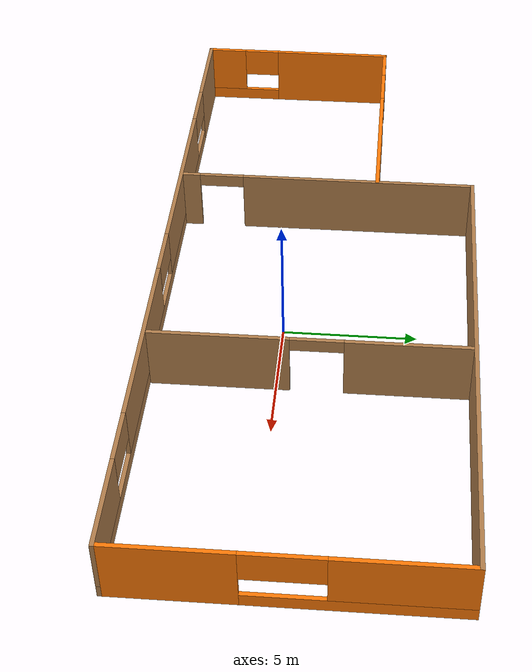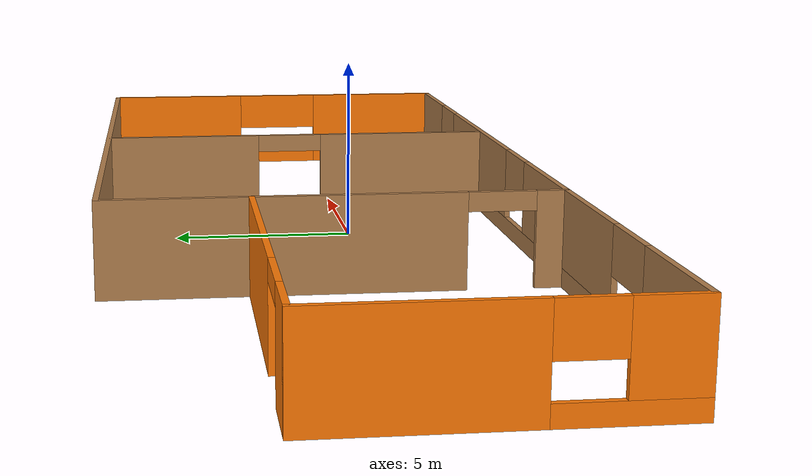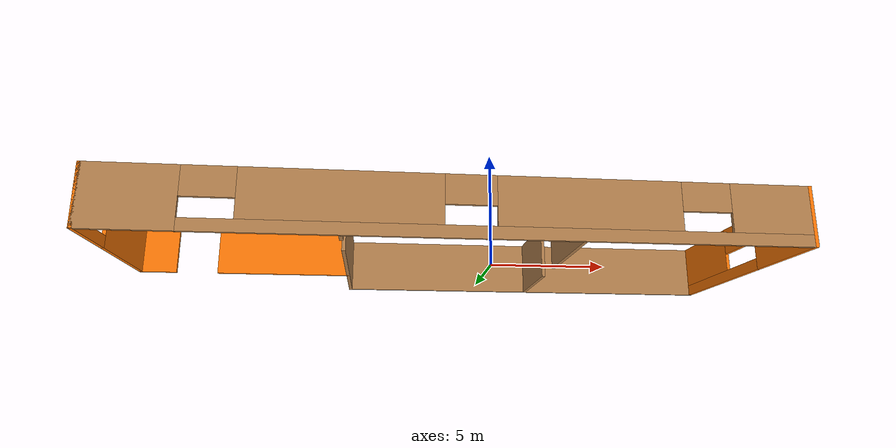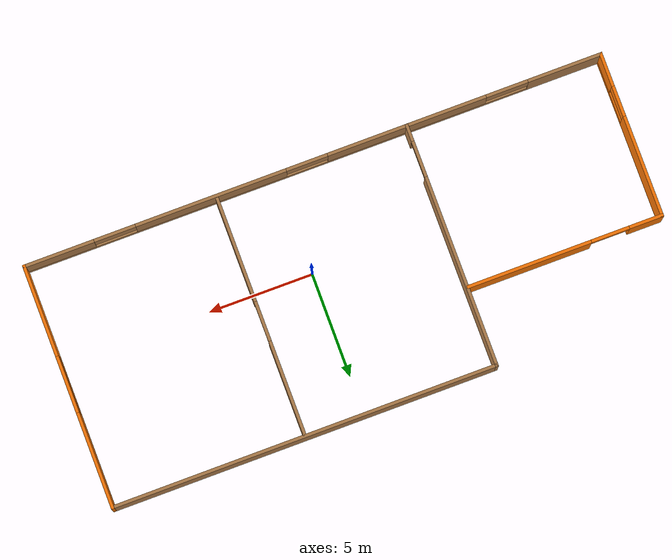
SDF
<?xml version='1.0'?>
<sdf version='1.6'>
  <model name='model'>
    <pose frame=''>-1.77008 1.17451 0 0 -0 0</pose>
    <link name='Wall_0'>
      <pose frame=''>-13.9251 -1.88049 0 0 0 -1.5708</pose>
      <visual name='Wall_0_Visual_0'>
        <pose frame=''>-1.55568 0 1.25 0 -0 0</pose>
        <geometry>
          <box>
            <size>4.88864 0.15 2.5</size>
          </box>
        </geometry>
        <material>
          <script>
            <uri>file://media/materials/scripts/gazebo.material</uri>
            <name>Gazebo/Grey</name>
          </script>
          <ambient>0.996078 0.47451 0.0196078 1</ambient>
        </material>
        <meta>
          <layer>0</layer>
        </meta>
      </visual>
      <collision name='Wall_0_Collision_0'>
        <geometry>
          <box>
            <size>4.88864 0.15 2.5</size>
          </box>
        </geometry>
        <pose frame=''>-1.55568 0 1.25 0 -0 0</pose>
      </collision>
      <visual name='Wall_0_Visual_1'>
        <pose frame=''>2.44432 0 0.25 0 -0 0</pose>
        <geometry>
          <box>
            <size>3.11136 0.15 0.5</size>
          </box>
        </geometry>
        <material>
          <script>
            <uri>file://media/materials/scripts/gazebo.material</uri>
            <name>Gazebo/Grey</name>
          </script>
          <ambient>0.996078 0.47451 0.0196078 1</ambient>
        </material>
        <meta>
          <layer>0</layer>
        </meta>
      </visual>
      <collision name='Wall_0_Collision_1'>
        <geometry>
          <box>
            <size>3.11136 0.15 0.5</size>
          </box>
        </geometry>
        <pose frame=''>2.44432 0 0.25 0 -0 0</pose>
      </collision>
      <visual name='Wall_0_Visual_2'>
        <pose frame=''>3.17682 0 1.5 0 -0 0</pose>
        <geometry>
          <box>
            <size>1.64636 0.15 2</size>
          </box>
        </geometry>
        <material>
          <script>
            <uri>file://media/materials/scripts/gazebo.material</uri>
            <name>Gazebo/Grey</name>
          </script>
          <ambient>0.996078 0.47451 0.0196078 1</ambient>
        </material>
        <meta>
          <layer>0</layer>
        </meta>
      </visual>
      <collision name='Wall_0_Collision_2'>
        <geometry>
          <box>
            <size>1.64636 0.15 2</size>
          </box>
        </geometry>
        <pose frame=''>3.17682 0 1.5 0 -0 0</pose>
      </collision>
      <visual name='Wall_0_Visual_3'>
        <pose frame=''>1.62114 0 1.9 0 -0 0</pose>
        <geometry>
          <box>
            <size>1.465 0.15 1.2</size>
          </box>
        </geometry>
        <material>
          <script>
            <uri>file://media/materials/scripts/gazebo.material</uri>
            <name>Gazebo/Grey</name>
          </script>
          <ambient>0.996078 0.47451 0.0196078 1</ambient>
        </material>
        <meta>
          <layer>0</layer>
        </meta>
      </visual>
      <collision name='Wall_0_Collision_3'>
        <geometry>
          <box>
            <size>1.465 0.15 1.2</size>
          </box>
        </geometry>
        <pose frame=''>1.62114 0 1.9 0 -0 0</pose>
      </collision>
    </link>
    <link name='Wall_1'>
      <pose frame=''>-8.2e-05 -5.80549 0 0 -0 0</pose>
      <visual name='Wall_1_Visual_0'>
        <pose frame=''>-12.1941 0 1.25 0 -0 0</pose>
        <geometry>
          <box>
            <size>3.61183 0.15 2.5</size>
          </box>
        </geometry>
        <material>
          <script>
            <uri>file://media/materials/scripts/gazebo.material</uri>
            <name>Gazebo/Wood</name>
          </script>
          <ambient>0.996078 0.47451 0.0196078 1</ambient>
        </material>
        <meta>
          <layer>0</layer>
        </meta>
      </visual>
      <collision name='Wall_1_Collision_0'>
        <geometry>
          <box>
            <size>3.61183 0.15 2.5</size>
          </box>
        </geometry>
        <pose frame=''>-12.1941 0 1.25 0 -0 0</pose>
      </collision>
      <visual name='Wall_1_Visual_1'>
        <pose frame=''>1.80591 0 0.25 0 -0 0</pose>
        <geometry>
          <box>
            <size>24.3882 0.15 0.5</size>
          </box>
        </geometry>
        <material>
          <script>
            <uri>file://media/materials/scripts/gazebo.material</uri>
            <name>Gazebo/Wood</name>
          </script>
          <ambient>0.996078 0.47451 0.0196078 1</ambient>
        </material>
        <meta>
          <layer>0</layer>
        </meta>
      </visual>
      <collision name='Wall_1_Collision_1'>
        <geometry>
          <box>
            <size>24.3882 0.15 0.5</size>
          </box>
        </geometry>
        <pose frame=''>1.80591 0 0.25 0 -0 0</pose>
      </collision>
      <visual name='Wall_1_Visual_2'>
        <pose frame=''>-4.52874 0 1.5 0 -0 0</pose>
        <geometry>
          <box>
            <size>7.67163 0.15 2</size>
          </box>
        </geometry>
        <material>
          <script>
            <uri>file://media/materials/scripts/gazebo.material</uri>
            <name>Gazebo/Wood</name>
          </script>
          <ambient>0.996078 0.47451 0.0196078 1</ambient>
        </material>
        <meta>
          <layer>0</layer>
        </meta>
      </visual>
      <collision name='Wall_1_Collision_2'>
        <geometry>
          <box>
            <size>7.67163 0.15 2</size>
          </box>
        </geometry>
        <pose frame=''>-4.52874 0 1.5 0 -0 0</pose>
      </collision>
      <visual name='Wall_1_Visual_3'>
        <pose frame=''>4.938 0 1.5 0 -0 0</pose>
        <geometry>
          <box>
            <size>7.27582 0.15 2</size>
          </box>
        </geometry>
        <material>
          <script>
            <uri>file://media/materials/scripts/gazebo.material</uri>
            <name>Gazebo/Wood</name>
          </script>
          <ambient>0.996078 0.47451 0.0196078 1</ambient>
        </material>
        <meta>
          <layer>0</layer>
        </meta>
      </visual>
      <collision name='Wall_1_Collision_3'>
        <geometry>
          <box>
            <size>7.27582 0.15 2</size>
          </box>
        </geometry>
        <pose frame=''>4.938 0 1.5 0 -0 0</pose>
      </collision>
      <visual name='Wall_1_Visual_4'>
        <pose frame=''>12.2845 0 1.5 0 -0 0</pose>
        <geometry>
          <box>
            <size>3.43107 0.15 2</size>
          </box>
        </geometry>
        <material>
          <script>
            <uri>file://media/materials/scripts/gazebo.material</uri>
            <name>Gazebo/Wood</name>
          </script>
          <ambient>0.996078 0.47451 0.0196078 1</ambient>
        </material>
        <meta>
          <layer>0</layer>
        </meta>
      </visual>
      <collision name='Wall_1_Collision_4'>
        <geometry>
          <box>
            <size>3.43107 0.15 2</size>
          </box>
        </geometry>
        <pose frame=''>12.2845 0 1.5 0 -0 0</pose>
      </collision>
      <visual name='Wall_1_Visual_5'>
        <pose frame=''>-9.37637 0 1.9 0 -0 0</pose>
        <geometry>
          <box>
            <size>2.02361 0.15 1.2</size>
          </box>
        </geometry>
        <material>
          <script>
            <uri>file://media/materials/scripts/gazebo.material</uri>
            <name>Gazebo/Wood</name>
          </script>
          <ambient>0.996078 0.47451 0.0196078 1</ambient>
        </material>
        <meta>
          <layer>0</layer>
        </meta>
      </visual>
      <collision name='Wall_1_Collision_5'>
        <geometry>
          <box>
            <size>2.02361 0.15 1.2</size>
          </box>
        </geometry>
        <pose frame=''>-9.37637 0 1.9 0 -0 0</pose>
      </collision>
      <visual name='Wall_1_Visual_6'>
        <pose frame=''>0.30358 0 1.9 0 -0 0</pose>
        <geometry>
          <box>
            <size>1.99302 0.15 1.2</size>
          </box>
        </geometry>
        <material>
          <script>
            <uri>file://media/materials/scripts/gazebo.material</uri>
            <name>Gazebo/Wood</name>
          </script>
          <ambient>0.996078 0.47451 0.0196078 1</ambient>
        </material>
        <meta>
          <layer>0</layer>
        </meta>
      </visual>
      <collision name='Wall_1_Collision_6'>
        <geometry>
          <box>
            <size>1.99302 0.15 1.2</size>
          </box>
        </geometry>
        <pose frame=''>0.30358 0 1.9 0 -0 0</pose>
      </collision>
      <visual name='Wall_1_Visual_7'>
        <pose frame=''>9.57242 0 1.9 0 -0 0</pose>
        <geometry>
          <box>
            <size>1.99302 0.15 1.2</size>
          </box>
        </geometry>
        <material>
          <script>
            <uri>file://media/materials/scripts/gazebo.material</uri>
            <name>Gazebo/Wood</name>
          </script>
          <ambient>0.996078 0.47451 0.0196078 1</ambient>
        </material>
        <meta>
          <layer>0</layer>
        </meta>
      </visual>
      <collision name='Wall_1_Collision_7'>
        <geometry>
          <box>
            <size>1.99302 0.15 1.2</size>
          </box>
        </geometry>
        <pose frame=''>9.57242 0 1.9 0 -0 0</pose>
      </collision>
    </link>
    <link name='Wall_17'>
      <pose frame=''>-4.52976 0.005045 0 0 -0 1.5708</pose>
      <visual name='Wall_17_Visual_0'>
        <pose frame=''>-5.45834 0 1.25 0 -0 0</pose>
        <geometry>
          <box>
            <size>0.833314 0.15 2.5</size>
          </box>
        </geometry>
        <material>
          <script>
            <uri>file://media/materials/scripts/gazebo.material</uri>
            <name>Gazebo/Wood</name>
          </script>
          <ambient>0.996078 0.47451 0.0196078 1</ambient>
        </material>
        <meta>
          <layer>0</layer>
        </meta>
      </visual>
      <collision name='Wall_17_Collision_0'>
        <geometry>
          <box>
            <size>0.833314 0.15 2.5</size>
          </box>
        </geometry>
        <pose frame=''>-5.45834 0 1.25 0 -0 0</pose>
      </collision>
      <visual name='Wall_17_Visual_1'>
        <pose frame=''>1.27963 0 1.25 0 -0 0</pose>
        <geometry>
          <box>
            <size>9.19075 0.15 2.5</size>
          </box>
        </geometry>
        <material>
          <script>
            <uri>file://media/materials/scripts/gazebo.material</uri>
            <name>Gazebo/Wood</name>
          </script>
          <ambient>0.996078 0.47451 0.0196078 1</ambient>
        </material>
        <meta>
          <layer>0</layer>
        </meta>
      </visual>
      <collision name='Wall_17_Collision_1'>
        <geometry>
          <box>
            <size>9.19075 0.15 2.5</size>
          </box>
        </geometry>
        <pose frame=''>1.27963 0 1.25 0 -0 0</pose>
      </collision>
      <visual name='Wall_17_Visual_2'>
        <pose frame=''>-4.17872 0 2.25 0 -0 0</pose>
        <geometry>
          <box>
            <size>1.72594 0.15 0.5</size>
          </box>
        </geometry>
        <material>
          <script>
            <uri>file://media/materials/scripts/gazebo.material</uri>
            <name>Gazebo/Wood</name>
          </script>
          <ambient>0.996078 0.47451 0.0196078 1</ambient>
        </material>
        <meta>
          <layer>0</layer>
        </meta>
      </visual>
      <collision name='Wall_17_Collision_2'>
        <geometry>
          <box>
            <size>1.72594 0.15 0.5</size>
          </box>
        </geometry>
        <pose frame=''>-4.17872 0 2.25 0 -0 0</pose>
      </collision>
    </link>
    <link name='Wall_18'>
      <collision name='Wall_18_Collision'>
        <geometry>
          <box>
            <size>18.6048 0.15 2.5</size>
          </box>
        </geometry>
        <pose frame=''>0 0 1.25 0 -0 0</pose>
      </collision>
      <visual name='Wall_18_Visual'>
        <pose frame=''>0 0 1.25 0 -0 0</pose>
        <geometry>
          <box>
            <size>18.6048 0.15 2.5</size>
          </box>
        </geometry>
        <material>
          <script>
            <uri>file://media/materials/scripts/gazebo.material</uri>
            <name>Gazebo/Wood</name>
          </script>
          <ambient>0.996078 0.47451 0.0196078 1</ambient>
        </material>
        <meta>
          <layer>0</layer>
        </meta>
      </visual>
      <pose frame=''>4.69766 5.80527 0 0 -0 2.4e-05</pose>
    </link>
    <link name='Wall_28'>
      <pose frame=''>4.6779 0.031971 0 0 0 -1.5708</pose>
      <visual name='Wall_28_Visual_0'>
        <pose frame=''>-3.47499 0 1.25 0 -0 0</pose>
        <geometry>
          <box>
            <size>4.55003 0.15 2.5</size>
          </box>
        </geometry>
        <material>
          <script>
            <uri>file://media/materials/scripts/gazebo.material</uri>
            <name>Gazebo/Wood</name>
          </script>
          <ambient>0.996078 0.47451 0.0196078 1</ambient>
        </material>
        <meta>
          <layer>0</layer>
        </meta>
      </visual>
      <collision name='Wall_28_Collision_0'>
        <geometry>
          <box>
            <size>4.55003 0.15 2.5</size>
          </box>
        </geometry>
        <pose frame=''>-3.47499 0 1.25 0 -0 0</pose>
      </collision>
      <visual name='Wall_28_Visual_1'>
        <pose frame=''>3.22975 0 1.25 0 -0 0</pose>
        <geometry>
          <box>
            <size>5.0405 0.15 2.5</size>
          </box>
        </geometry>
        <material>
          <script>
            <uri>file://media/materials/scripts/gazebo.material</uri>
            <name>Gazebo/Wood</name>
          </script>
          <ambient>0.996078 0.47451 0.0196078 1</ambient>
        </material>
        <meta>
          <layer>0</layer>
        </meta>
      </visual>
      <collision name='Wall_28_Collision_1'>
        <geometry>
          <box>
            <size>5.0405 0.15 2.5</size>
          </box>
        </geometry>
        <pose frame=''>3.22975 0 1.25 0 -0 0</pose>
      </collision>
      <visual name='Wall_28_Visual_2'>
        <pose frame=''>-0.245234 0 2.25 0 -0 0</pose>
        <geometry>
          <box>
            <size>1.90948 0.15 0.5</size>
          </box>
        </geometry>
        <material>
          <script>
            <uri>file://media/materials/scripts/gazebo.material</uri>
            <name>Gazebo/Wood</name>
          </script>
          <ambient>0.996078 0.47451 0.0196078 1</ambient>
        </material>
        <meta>
          <layer>0</layer>
        </meta>
      </visual>
      <collision name='Wall_28_Collision_2'>
        <geometry>
          <box>
            <size>1.90948 0.15 0.5</size>
          </box>
        </geometry>
        <pose frame=''>-0.245234 0 2.25 0 -0 0</pose>
      </collision>
    </link>
    <link name='Wall_30'>
      <pose frame=''>13.925 0 0 0 -0 1.57078</pose>
      <visual name='Wall_30_Visual_0'>
        <pose frame=''>-3.67463 0 1.25 0 -0 0</pose>
        <geometry>
          <box>
            <size>4.41173 0.15 2.5</size>
          </box>
        </geometry>
        <material>
          <script>
            <uri>file://media/materials/scripts/gazebo.material</uri>
            <name>Gazebo/Grey</name>
          </script>
          <ambient>0.996078 0.47451 0.0196078 1</ambient>
        </material>
        <meta>
          <layer>0</layer>
        </meta>
      </visual>
      <collision name='Wall_30_Collision_0'>
        <geometry>
          <box>
            <size>4.41173 0.15 2.5</size>
          </box>
        </geometry>
        <pose frame=''>-3.67463 0 1.25 0 -0 0</pose>
      </collision>
      <visual name='Wall_30_Visual_1'>
        <pose frame=''>2.20587 0 0.25 0 -0 0</pose>
        <geometry>
          <box>
            <size>7.34926 0.15 0.5</size>
          </box>
        </geometry>
        <material>
          <script>
            <uri>file://media/materials/scripts/gazebo.material</uri>
            <name>Gazebo/Grey</name>
          </script>
          <ambient>0.996078 0.47451 0.0196078 1</ambient>
        </material>
        <meta>
          <layer>0</layer>
        </meta>
      </visual>
      <collision name='Wall_30_Collision_1'>
        <geometry>
          <box>
            <size>7.34926 0.15 0.5</size>
          </box>
        </geometry>
        <pose frame=''>2.20587 0 0.25 0 -0 0</pose>
      </collision>
      <visual name='Wall_30_Visual_2'>
        <pose frame=''>3.56946 0 1.5 0 -0 0</pose>
        <geometry>
          <box>
            <size>4.62207 0.15 2</size>
          </box>
        </geometry>
        <material>
          <script>
            <uri>file://media/materials/scripts/gazebo.material</uri>
            <name>Gazebo/Grey</name>
          </script>
          <ambient>0.996078 0.47451 0.0196078 1</ambient>
        </material>
        <meta>
          <layer>0</layer>
        </meta>
      </visual>
      <collision name='Wall_30_Collision_2'>
        <geometry>
          <box>
            <size>4.62207 0.15 2</size>
          </box>
        </geometry>
        <pose frame=''>3.56946 0 1.5 0 -0 0</pose>
      </collision>
      <visual name='Wall_30_Visual_3'>
        <pose frame=''>-0.105172 0 1.9 0 -0 0</pose>
        <geometry>
          <box>
            <size>2.72718 0.15 1.2</size>
          </box>
        </geometry>
        <material>
          <script>
            <uri>file://media/materials/scripts/gazebo.material</uri>
            <name>Gazebo/Grey</name>
          </script>
          <ambient>0.996078 0.47451 0.0196078 1</ambient>
        </material>
        <meta>
          <layer>0</layer>
        </meta>
      </visual>
      <collision name='Wall_30_Collision_3'>
        <geometry>
          <box>
            <size>2.72718 0.15 1.2</size>
          </box>
        </geometry>
        <pose frame=''>-0.105172 0 1.9 0 -0 0</pose>
      </collision>
    </link>
    <link name='Wall_7'>
      <pose frame=''>-9.25008 2.04451 0 0 -0 0</pose>
      <visual name='Wall_7_Visual_0'>
        <pose frame=''>-3.92004 0 1.25 0 -0 0</pose>
        <geometry>
          <box>
            <size>1.65992 0.15 2.5</size>
          </box>
        </geometry>
        <material>
          <script>
            <uri>file://media/materials/scripts/gazebo.material</uri>
            <name>Gazebo/Grey</name>
          </script>
          <ambient>0.996078 0.47451 0.0196078 1</ambient>
        </material>
        <meta>
          <layer>0</layer>
        </meta>
      </visual>
      <collision name='Wall_7_Collision_0'>
        <geometry>
          <box>
            <size>1.65992 0.15 2.5</size>
          </box>
        </geometry>
        <pose frame=''>-3.92004 0 1.25 0 -0 0</pose>
      </collision>
      <visual name='Wall_7_Visual_1'>
        <pose frame=''>1.74546 0 1.25 0 -0 0</pose>
        <geometry>
          <box>
            <size>6.00908 0.15 2.5</size>
          </box>
        </geometry>
        <material>
          <script>
            <uri>file://media/materials/scripts/gazebo.material</uri>
            <name>Gazebo/Grey</name>
          </script>
          <ambient>0.996078 0.47451 0.0196078 1</ambient>
        </material>
        <meta>
          <layer>0</layer>
        </meta>
      </visual>
      <collision name='Wall_7_Collision_1'>
        <geometry>
          <box>
            <size>6.00908 0.15 2.5</size>
          </box>
        </geometry>
        <pose frame=''>1.74546 0 1.25 0 -0 0</pose>
      </collision>
      <visual name='Wall_7_Visual_2'>
        <pose frame=''>-2.17458 0 2.25 0 -0 0</pose>
        <geometry>
          <box>
            <size>1.83101 0.15 0.5</size>
          </box>
        </geometry>
        <material>
          <script>
            <uri>file://media/materials/scripts/gazebo.material</uri>
            <name>Gazebo/Grey</name>
          </script>
          <ambient>0.996078 0.47451 0.0196078 1</ambient>
        </material>
        <meta>
          <layer>0</layer>
        </meta>
      </visual>
      <collision name='Wall_7_Collision_2'>
        <geometry>
          <box>
            <size>1.83101 0.15 0.5</size>
          </box>
        </geometry>
        <pose frame=''>-2.17458 0 2.25 0 -0 0</pose>
      </collision>
    </link>
    <static>1</static>
  </model>
</sdf>
